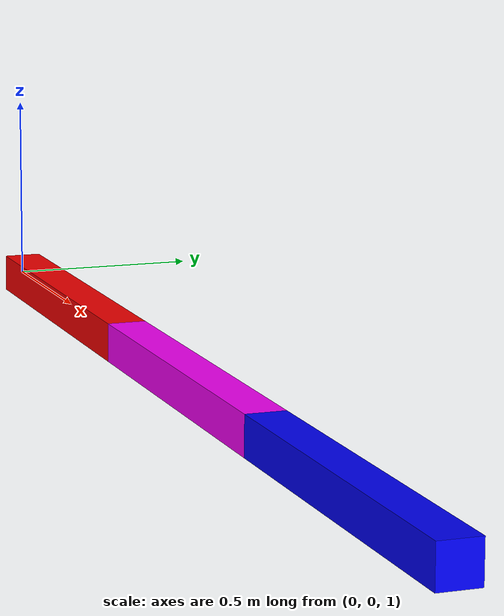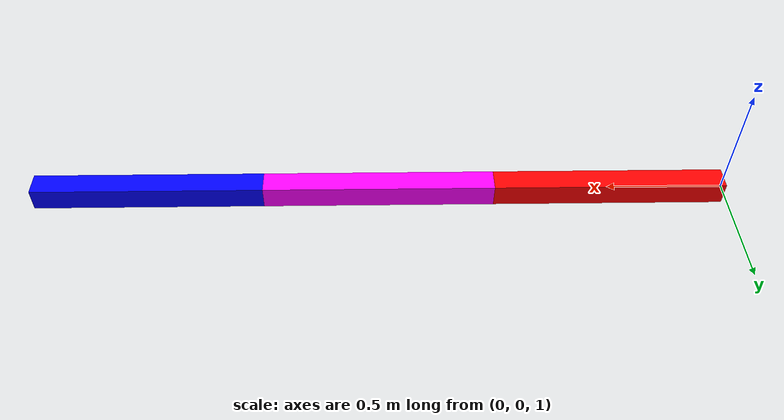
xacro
<?xml version="1.0"?>
<!-- Revolute-Revolute Manipulator -->
<robot name="rr_manipulator"
  xmlns:xacro="http://www.ros.org/wiki/xacro"
  xmlns:controller="http://playerstage.sourceforge.net/gazebo/xmlschema/#controller">

  <xacro:property name="PI" value="3.1415926535897931"/>

  <gazebo>
    <plugin name="ros_control" filename="libgazebo_ros_control_plugin.so">
      <robotNamespace>rr/ros_control</robotNamespace>
      <controlPeriod>0.001</controlPeriod>
      <joint>joint1</joint>
      <joint>joint2</joint>
    </plugin>
  </gazebo>

  <xacro:include filename="$(find gazebo_ros_control_examples)/models/rr_manipulator_description.urdf.xacro"/>

</robot>

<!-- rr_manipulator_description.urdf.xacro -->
<robot xmlns:xacro="http://www.ros.org/wiki/xacro">

  <material name="red"> <color rgba="1 0 0 1"/> </material>
  <material name="purple"> <color rgba="1.0 0 1.0 1"/> </material>
  <material name="blue"> <color rgba="0 0 1 1"/> </material>

  <link name="world"/>

  <link name="link1">
    <collision name="collision">
      <origin xyz="0.5 0 0" rpy="0 0 0"/>
      <geometry> <box size="0.9 0.1 0.1"/> </geometry>
    </collision>
    <visual name="visual">
      <origin xyz="0.5 0 0" rpy="0 0 0"/>
      <geometry> <box size="1 0.1 0.1"/> </geometry>
      <material name="red"/>
    </visual>
    <inertial>
      <origin xyz="0.5 0 0" rpy="0 0 0"/>
      <mass value="1"/>
      <inertia
        ixx="1.0" ixy="0.0" ixz="0.0"
        iyy="1.0" iyz="0.0"
        izz="1.0"/>
    </inertial>
  </link>

  <link name="link2">
    <collision name="collision">
      <origin xyz="0.5 0 0" rpy="0 0 0"/>
      <geometry> <box size="0.9 0.1 0.1"/> </geometry>
    </collision>
    <visual name="visual">
      <origin xyz="0.5 0 0" rpy="0 0 0"/>
      <geometry> <box size="1 0.1 0.1"/> </geometry>
      <material name="purple"/>
    </visual>
    <inertial>
      <origin xyz="0.5 0 0" rpy="0 0 0"/>
      <mass value="1"/>
      <inertia
        ixx="1.0" ixy="0.0" ixz="0.0"
        iyy="1.0" iyz="0.0"
        izz="1.0"/>
    </inertial>
  </link>

  <link name="link3">
    <collision name="collision">
      <origin xyz="0.5 0 0" rpy="0 0 0"/>
      <geometry> <box size="0.9 0.1 0.1"/> </geometry>
    </collision>
    <visual name="visual">
      <origin xyz="0.5 0 0" rpy="0 0 0"/>
      <geometry> <box size="1 0.1 0.1"/> </geometry>
      <material name="blue"/>
    </visual>
    <inertial>
      <origin xyz="0.5 0 0" rpy="0 0 0"/>
      <mass value="1"/>
      <inertia
        ixx="1.0" ixy="0.0" ixz="0.0"
        iyy="1.0" iyz="0.0"
        izz="1.0"/>
    </inertial>
  </link>

  <joint name="fixed" type="fixed">
    <parent link="world"/>
    <child link="link1"/>
    <origin xyz="0 0 1" rpy="${PI} 0 0"/>
  </joint>

  <joint name="joint1" type="continuous">
    <parent link="link1"/>
    <child link="link2"/>
    <origin xyz="1 0 0" rpy="0 0 0"/>
    <axis xyz="0 0 1"/>
  </joint>

  <joint name="joint2" type="continuous">
    <parent link="link2"/>
    <child link="link3"/>
    <origin xyz="1 0 0" rpy="0 0 0"/>
    <axis xyz="0 1 0"/>
  </joint>
</robot>
